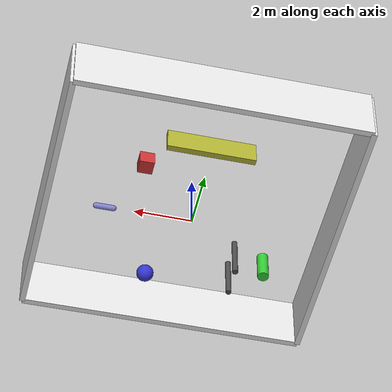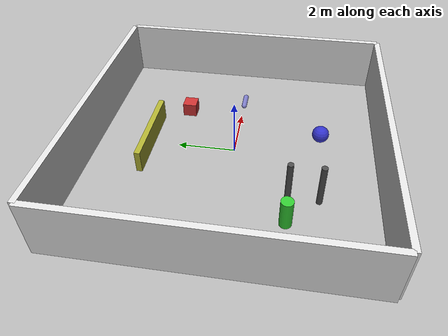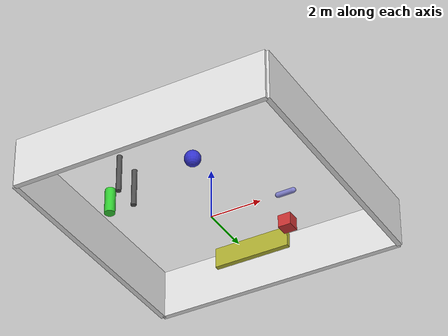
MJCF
<mujoco model="room_environment">
    <asset>
        <texture name="skybox" type="skybox" builtin="gradient" rgb1=".3 .5 .7" rgb2="0 0 0" width="512" height="512"/>
        <texture name="grid" type="2d" builtin="checker" rgb1=".1 .2 .3" rgb2=".2 .3 .4" width="300" height="300" mark="edge" markrgb=".8 .8 .8"/>
        <material name="grid" texture="grid" texrepeat="1 1" texuniform="true"/>
    </asset>
    <worldbody>
        <!-- Replace floor if needed, but since it's already in Lite3_lidar.xml, we'll just use the walls here -->
        <!-- Room Walls (5x5 room) -->
        <geom name="wall_n" type="box" pos="5 0 1" size="0.1 5 1" rgba="0.9 0.9 0.9 1"/>
        <geom name="wall_s" type="box" pos="-5 0 1" size="0.1 5 1" rgba="0.9 0.9 0.9 1"/>
        <geom name="wall_e" type="box" pos="0 5 1" size="5 0.1 1" rgba="0.9 0.9 0.9 1"/>
        <geom name="wall_w" type="box" pos="0 -5 1" size="5 0.1 1" rgba="0.9 0.9 0.9 1"/>

        <!-- Some random objects for Lidar to pick up -->
        <body name="box_1" pos="2 2 0.25">
            <geom type="box" size="0.25 0.25 0.25" rgba="0.8 0.2 0.2 1"/>
        </body>
        <body name="column_1" pos="-3 -2 0.5">
            <geom type="cylinder" size="0.2 0.5" rgba="0.2 0.8 0.2 1"/>
        </body>
        <body name="sphere_1" pos="1 -3 0.3">
            <geom type="sphere" size="0.3" rgba="0.2 0.2 0.8 1"/>
        </body>
        <body name="barrier_1" pos="0 3 0.4">
            <geom type="box" size="1.5 0.1 0.4" rgba="0.7 0.7 0.2 1"/>
        </body>
        <body name="pillar_1" pos="-2 -3 0.75">
            <geom type="cylinder" size="0.1 0.75" rgba="0.3 0.3 0.3 1"/>
        </body>
        <body name="capsule_1" pos="3 0 0">
            <geom type="capsule" size="0.1 0.3" quat="0.707 0 0.707 0" rgba="0.5 0.5 0.8 1"/>
        </body>
        <body name="pillar_12" pos="-2 -2 0.75">
            <geom type="cylinder" size="0.1 0.75" rgba="0.3 0.3 0.3 1"/>
        </body>

    </worldbody>
</mujoco>
